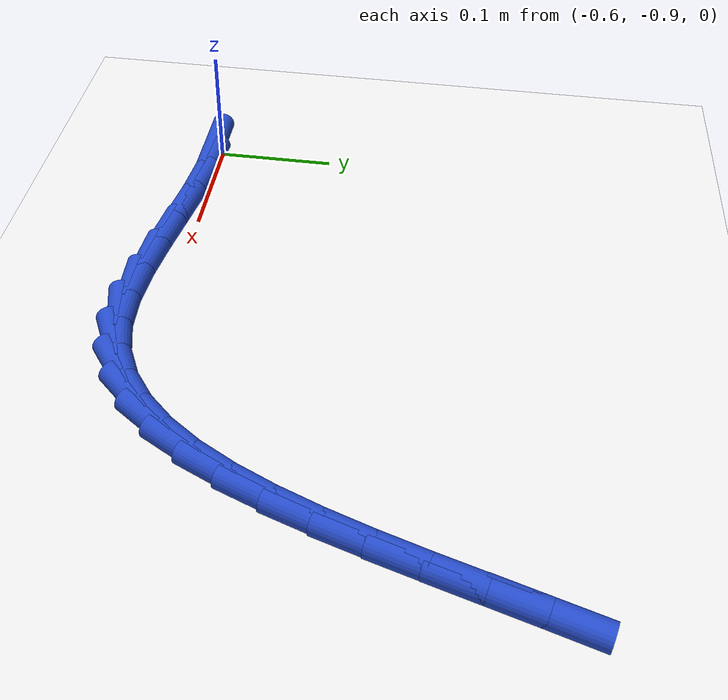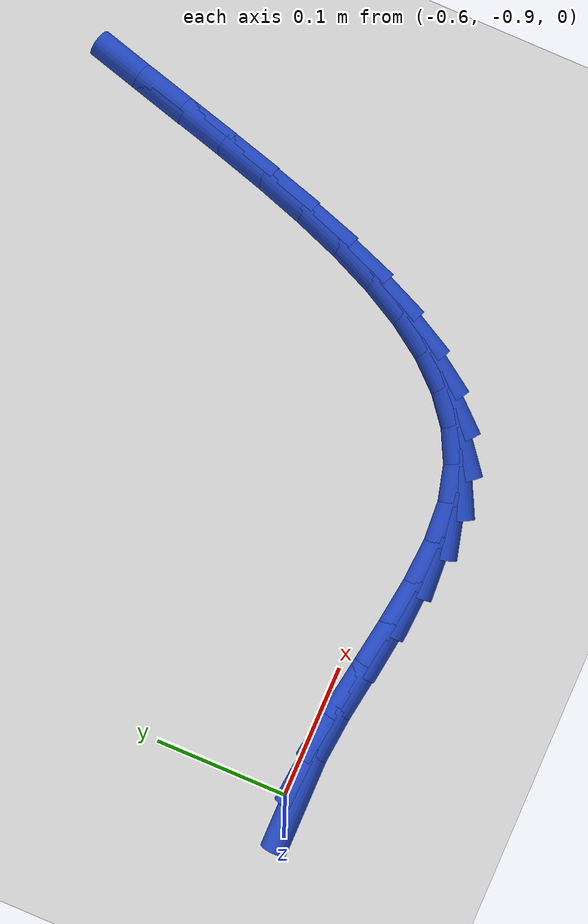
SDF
<sdf version="1.6">
 <world name="default">
  <model name="ground_plane">
   <static>1</static>
   <link name="link">
    <collision name="collision">
     <geometry><plane><normal>0 0 1</normal><size>100 100</size></plane></geometry>
     <surface><friction><ode><mu>100</mu><mu2>50</mu2></ode></friction></surface>
    </collision>
    <visual name="visual">
     <cast_shadows>0</cast_shadows>
     <geometry><plane><normal>0 0 1</normal><size>100 100</size></plane></geometry>
     <material>
      <script><uri>file://media/materials/scripts/gazebo.material</uri><name>Gazebo/WhiteGlow</name></script>
     </material>
    </visual>
   </link>
  </model>
  <model name="line">
   <link name="link_202">
    <pose>-0.5964737548011985 -0.906611104542684 0.01 0 1.57 -0.0011210601721741854</pose>
    <collision name="collision">
     <geometry><cylinder><radius>0.01</radius><length>0.08</length></cylinder></geometry>
    </collision>
    <visual name="visual">
     <material>
      <script><name>Gazebo/Blue</name><uri>file://media/materials/scripts/gazebo.material</uri></script>
     </material>
     <geometry><cylinder><radius>0.01</radius><length>0.08</length></cylinder></geometry>
    </visual>
   </link>
   <link name="link_203">
    <pose>-0.5632179458038454 -0.9066483863212627 0.01 0 1.57 -0.09963000186943508</pose>
    <collision name="collision">
     <geometry><cylinder><radius>0.01</radius><length>0.08</length></cylinder></geometry>
    </collision>
    <visual name="visual">
     <material>
      <script><name>Gazebo/Blue</name><uri>file://media/materials/scripts/gazebo.material</uri></script>
     </material>
     <geometry><cylinder><radius>0.01</radius><length>0.08</length></cylinder></geometry>
    </visual>
   </link>
   <link name="link_204">
    <pose>-0.5284427335456351 -0.9101245500279197 0.01 0 1.57 -0.15129363029148615</pose>
    <collision name="collision">
     <geometry><cylinder><radius>0.01</radius><length>0.08</length></cylinder></geometry>
    </collision>
    <visual name="visual">
     <material>
      <script><name>Gazebo/Blue</name><uri>file://media/materials/scripts/gazebo.material</uri></script>
     </material>
     <geometry><cylinder><radius>0.01</radius><length>0.08</length></cylinder></geometry>
    </visual>
   </link>
   <link name="link_205">
    <pose>-0.49293199585717096 -0.9155384693961774 0.01 0 1.57 -0.16350617260477202</pose>
    <collision name="collision">
     <geometry><cylinder><radius>0.01</radius><length>0.08</length></cylinder></geometry>
    </collision>
    <visual name="visual">
     <material>
      <script><name>Gazebo/Blue</name><uri>file://media/materials/scripts/gazebo.material</uri></script>
     </material>
     <geometry><cylinder><radius>0.01</radius><length>0.08</length></cylinder></geometry>
    </visual>
   </link>
   <link name="link_206">
    <pose>-0.4574696105690569 -0.9213890181595573 0.01 0 1.57 -0.13733476880853035</pose>
    <collision name="collision">
     <geometry><cylinder><radius>0.01</radius><length>0.08</length></cylinder></geometry>
    </collision>
    <visual name="visual">
     <material>
      <script><name>Gazebo/Blue</name><uri>file://media/materials/scripts/gazebo.material</uri></script>
     </material>
     <geometry><cylinder><radius>0.01</radius><length>0.08</length></cylinder></geometry>
    </visual>
   </link>
   <link name="link_207">
    <pose>-0.4228394555118965 -0.9261750700515817 0.01 0 1.57 -0.06715595224297545</pose>
    <collision name="collision">
     <geometry><cylinder><radius>0.01</radius><length>0.08</length></cylinder></geometry>
    </collision>
    <visual name="visual">
     <material>
      <script><name>Gazebo/Blue</name><uri>file://media/materials/scripts/gazebo.material</uri></script>
     </material>
     <geometry><cylinder><radius>0.01</radius><length>0.08</length></cylinder></geometry>
    </visual>
   </link>
   <link name="link_208">
    <pose>-0.3898254085162925 -0.9283954988057724 0.01 0 1.57 0.06023660208164801</pose>
    <collision name="collision">
     <geometry><cylinder><radius>0.01</radius><length>0.08</length></cylinder></geometry>
    </collision>
    <visual name="visual">
     <material>
      <script><name>Gazebo/Blue</name><uri>file://media/materials/scripts/gazebo.material</uri></script>
     </material>
     <geometry><cylinder><radius>0.01</radius><length>0.08</length></cylinder></geometry>
    </visual>
   </link>
   <link name="link_209">
    <pose>-0.35921134741285066 -0.9265491781556517 0.01 0 1.57 0.25520997943845875</pose>
    <collision name="collision">
     <geometry><cylinder><radius>0.01</radius><length>0.08</length></cylinder></geometry>
    </collision>
    <visual name="visual">
     <material>
      <script><name>Gazebo/Blue</name><uri>file://media/materials/scripts/gazebo.material</uri></script>
     </material>
     <geometry><cylinder><radius>0.01</radius><length>0.08</length></cylinder></geometry>
    </visual>
   </link>
   <link name="link_210">
    <pose>-0.33166093783600237 -0.919361302972819 0.01 0 1.57 0.4710246941439467</pose>
    <collision name="collision">
     <geometry><cylinder><radius>0.01</radius><length>0.08</length></cylinder></geometry>
    </collision>
    <visual name="visual">
     <material>
      <script><name>Gazebo/Blue</name><uri>file://media/materials/scripts/gazebo.material</uri></script>
     </material>
     <geometry><cylinder><radius>0.01</radius><length>0.08</length></cylinder></geometry>
    </visual>
   </link>
   <link name="link_211">
    <pose>-0.3071387505906907 -0.906873240218513 0.01 0 1.57 0.6704480959543363</pose>
    <collision name="collision">
     <geometry><cylinder><radius>0.01</radius><length>0.08</length></cylinder></geometry>
    </collision>
    <visual name="visual">
     <material>
      <script><name>Gazebo/Blue</name><uri>file://media/materials/scripts/gazebo.material</uri></script>
     </material>
     <geometry><cylinder><radius>0.01</radius><length>0.08</length></cylinder></geometry>
    </visual>
   </link>
   <link name="link_212">
    <pose>-0.28535729833399054 -0.8896009017729077 0.01 0 1.57 0.8394584641057883</pose>
    <collision name="collision">
     <geometry><cylinder><radius>0.01</radius><length>0.08</length></cylinder></geometry>
    </collision>
    <visual name="visual">
     <material>
      <script><name>Gazebo/Blue</name><uri>file://media/materials/scripts/gazebo.material</uri></script>
     </material>
     <geometry><cylinder><radius>0.01</radius><length>0.08</length></cylinder></geometry>
    </visual>
   </link>
   <link name="link_213">
    <pose>-0.2660287560020884 -0.8680608353366558 0.01 0 1.57 0.9745554925363042</pose>
    <collision name="collision">
     <geometry><cylinder><radius>0.01</radius><length>0.08</length></cylinder></geometry>
    </collision>
    <visual name="visual">
     <material>
      <script><name>Gazebo/Blue</name><uri>file://media/materials/scripts/gazebo.material</uri></script>
     </material>
     <geometry><cylinder><radius>0.01</radius><length>0.08</length></cylinder></geometry>
    </visual>
   </link>
   <link name="link_214">
    <pose>-0.24886529853117048 -0.842769588610409 0.01 0 1.57 1.0788652218312582</pose>
    <collision name="collision">
     <geometry><cylinder><radius>0.01</radius><length>0.08</length></cylinder></geometry>
    </collision>
    <visual name="visual">
     <material>
      <script><name>Gazebo/Blue</name><uri>file://media/materials/scripts/gazebo.material</uri></script>
     </material>
     <geometry><cylinder><radius>0.01</radius><length>0.08</length></cylinder></geometry>
    </visual>
   </link>
   <link name="link_215">
    <pose>-0.23357910085742242 -0.8142437092948189 0.01 0 1.57 1.1576465905444766</pose>
    <collision name="collision">
     <geometry><cylinder><radius>0.01</radius><length>0.08</length></cylinder></geometry>
    </collision>
    <visual name="visual">
     <material>
      <script><name>Gazebo/Blue</name><uri>file://media/materials/scripts/gazebo.material</uri></script>
     </material>
     <geometry><cylinder><radius>0.01</radius><length>0.08</length></cylinder></geometry>
    </visual>
   </link>
   <link name="link_216">
    <pose>-0.21988233791703135 -0.7829997450905389 0.01 0 1.57 1.215882175716826</pose>
    <collision name="collision">
     <geometry><cylinder><radius>0.01</radius><length>0.08</length></cylinder></geometry>
    </collision>
    <visual name="visual">
     <material>
      <script><name>Gazebo/Blue</name><uri>file://media/materials/scripts/gazebo.material</uri></script>
     </material>
     <geometry><cylinder><radius>0.01</radius><length>0.08</length></cylinder></geometry>
    </visual>
   </link>
   <link name="link_217">
    <pose>-0.20748718464618307 -0.7495542436982208 0.01 0 1.57 1.2574926116974916</pose>
    <collision name="collision">
     <geometry><cylinder><radius>0.01</radius><length>0.08</length></cylinder></geometry>
    </collision>
    <visual name="visual">
     <material>
      <script><name>Gazebo/Blue</name><uri>file://media/materials/scripts/gazebo.material</uri></script>
     </material>
     <geometry><cylinder><radius>0.01</radius><length>0.08</length></cylinder></geometry>
    </visual>
   </link>
   <link name="link_218">
    <pose>-0.19610581598106366 -0.7144237528185161 0.01 0 1.57 1.2852710333910802</pose>
    <collision name="collision">
     <geometry><cylinder><radius>0.01</radius><length>0.08</length></cylinder></geometry>
    </collision>
    <visual name="visual">
     <material>
      <script><name>Gazebo/Blue</name><uri>file://media/materials/scripts/gazebo.material</uri></script>
     </material>
     <geometry><cylinder><radius>0.01</radius><length>0.08</length></cylinder></geometry>
    </visual>
   </link>
   <link name="link_219">
    <pose>-0.1854504068578593 -0.6781248201520772 0.01 0 1.57 1.3010267848674344</pose>
    <collision name="collision">
     <geometry><cylinder><radius>0.01</radius><length>0.08</length></cylinder></geometry>
    </collision>
    <visual name="visual">
     <material>
      <script><name>Gazebo/Blue</name><uri>file://media/materials/scripts/gazebo.material</uri></script>
     </material>
     <geometry><cylinder><radius>0.01</radius><length>0.08</length></cylinder></geometry>
    </visual>
   </link>
   <link name="link_220">
    <pose>-0.17523313221275633 -0.6411739933995565 0.01 0 1.57 1.3057354292066359</pose>
    <collision name="collision">
     <geometry><cylinder><radius>0.01</radius><length>0.08</length></cylinder></geometry>
    </collision>
    <visual name="visual">
     <material>
      <script><name>Gazebo/Blue</name><uri>file://media/materials/scripts/gazebo.material</uri></script>
     </material>
     <geometry><cylinder><radius>0.01</radius><length>0.08</length></cylinder></geometry>
    </visual>
   </link>
   <link name="link_221">
    <pose>-0.16516616698194078 -0.6040878202616056 0.01 0 1.57 1.2996305722472998</pose>
    <collision name="collision">
     <geometry><cylinder><radius>0.01</radius><length>0.08</length></cylinder></geometry>
    </collision>
    <visual name="visual">
     <material>
      <script><name>Gazebo/Blue</name><uri>file://media/materials/scripts/gazebo.material</uri></script>
     </material>
     <geometry><cylinder><radius>0.01</radius><length>0.08</length></cylinder></geometry>
    </visual>
   </link>
  </model>
 </world>
</sdf>
